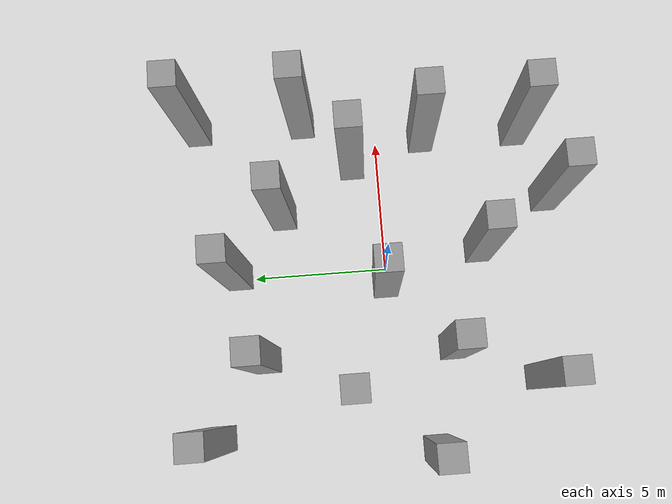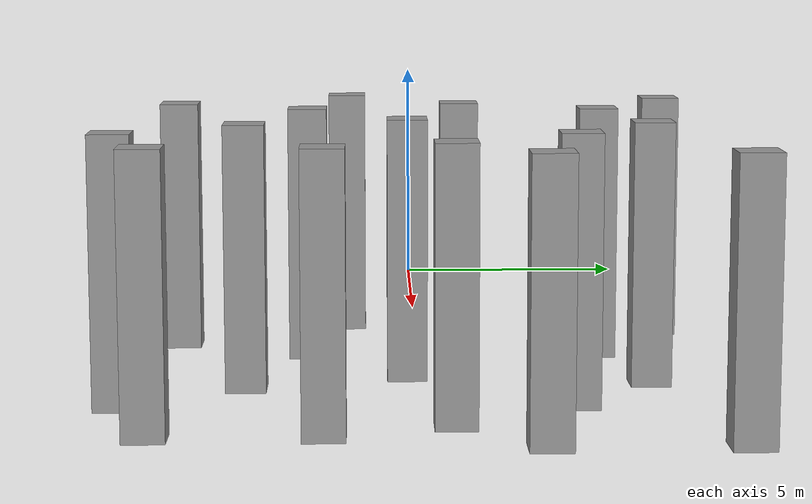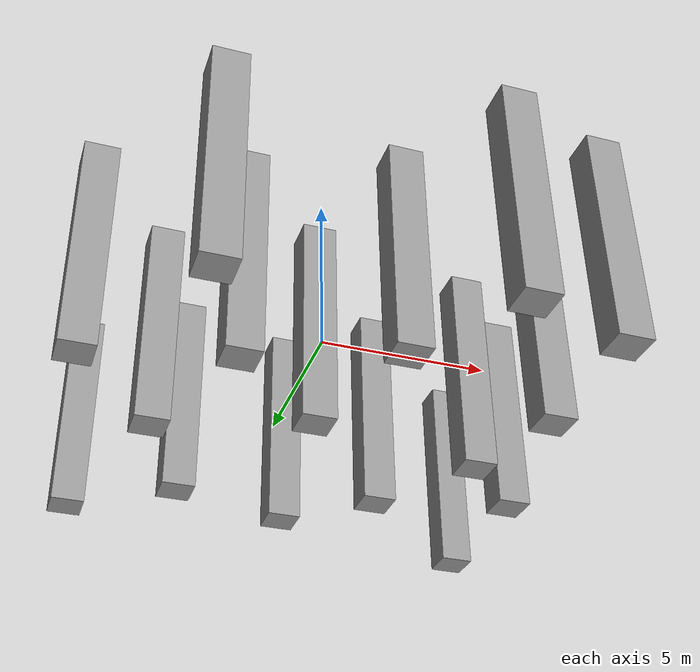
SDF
<?xml version='1.0'?>
<sdf version='1.7'>
  <model name='obstacle_zh'>
    <link name='link_0'>
      <inertial>
        <mass>6.57686</mass>
        <inertia>
          <ixx>24.255</ixx>
          <ixy>0</ixy>
          <ixz>0</ixz>
          <iyy>24.255</iyy>
          <iyz>0</iyz>
          <izz>1.09614</izz>
        </inertia>
        <pose>0 0 0 0 -0 0</pose>
      </inertial>
      <pose>-0.213065 -0.025285 0.5 0 -0 0</pose>
      <visual name='visual'>
        <pose>0 0 0 0 -0 0</pose>
        <geometry>
          <box>
            <size>1 1 6.57687</size>
          </box>
        </geometry>
        <material>
          <lighting>1</lighting>
          <script>
            <uri>file://media/materials/scripts/gazebo.material</uri>
            <name>Gazebo/Grey</name>
          </script>
          <shader type='pixel'/>
        </material>
        <transparency>0</transparency>
        <cast_shadows>1</cast_shadows>
      </visual>
      <collision name='collision'>
        <laser_retro>0</laser_retro>
        <max_contacts>10</max_contacts>
        <pose>0 0 0 0 -0 0</pose>
        <geometry>
          <box>
            <size>1 1 6.57687</size>
          </box>
        </geometry>
        <surface>
          <friction>
            <ode>
              <mu>1</mu>
              <mu2>1</mu2>
              <fdir1>0 0 0</fdir1>
              <slip1>0</slip1>
              <slip2>0</slip2>
            </ode>
            <torsional>
              <coefficient>1</coefficient>
              <patch_radius>0</patch_radius>
              <surface_radius>0</surface_radius>
              <use_patch_radius>1</use_patch_radius>
              <ode>
                <slip>0</slip>
              </ode>
            </torsional>
          </friction>
          <bounce>
            <restitution_coefficient>0</restitution_coefficient>
            <threshold>1e+06</threshold>
          </bounce>
          <contact>
            <collide_without_contact>0</collide_without_contact>
            <collide_without_contact_bitmask>1</collide_without_contact_bitmask>
            <collide_bitmask>1</collide_bitmask>
            <ode>
              <soft_cfm>0</soft_cfm>
              <soft_erp>0.2</soft_erp>
              <kp>1e+13</kp>
              <kd>1</kd>
              <max_vel>0.01</max_vel>
              <min_depth>0</min_depth>
            </ode>
            <bullet>
              <split_impulse>1</split_impulse>
              <split_impulse_penetration_threshold>-0.01</split_impulse_penetration_threshold>
              <soft_cfm>0</soft_cfm>
              <soft_erp>0.2</soft_erp>
              <kp>1e+13</kp>
              <kd>1</kd>
            </bullet>
          </contact>
        </surface>
      </collision>
    </link>
    <link name='link_0_clone'>
      <inertial>
        <mass>6.57686</mass>
        <inertia>
          <ixx>24.255</ixx>
          <ixy>0</ixy>
          <ixz>0</ixz>
          <iyy>24.255</iyy>
          <iyz>0</iyz>
          <izz>1.09614</izz>
        </inertia>
        <pose>0 0 0 0 -0 0</pose>
      </inertial>
      <pose>6 -2 0.5 0 -0 0</pose>
      <visual name='visual'>
        <pose>0 0 0 0 -0 0</pose>
        <geometry>
          <box>
            <size>1 1 6.57687</size>
          </box>
        </geometry>
        <material>
          <lighting>1</lighting>
          <script>
            <uri>file://media/materials/scripts/gazebo.material</uri>
            <name>Gazebo/Grey</name>
          </script>
          <shader type='pixel'/>
        </material>
        <transparency>0</transparency>
        <cast_shadows>1</cast_shadows>
      </visual>
      <collision name='collision'>
        <laser_retro>0</laser_retro>
        <max_contacts>10</max_contacts>
        <pose>0 0 0 0 -0 0</pose>
        <geometry>
          <box>
            <size>1 1 6.57687</size>
          </box>
        </geometry>
        <surface>
          <friction>
            <ode>
              <mu>1</mu>
              <mu2>1</mu2>
              <fdir1>0 0 0</fdir1>
              <slip1>0</slip1>
              <slip2>0</slip2>
            </ode>
            <torsional>
              <coefficient>1</coefficient>
              <patch_radius>0</patch_radius>
              <surface_radius>0</surface_radius>
              <use_patch_radius>1</use_patch_radius>
              <ode>
                <slip>0</slip>
              </ode>
            </torsional>
          </friction>
          <bounce>
            <restitution_coefficient>0</restitution_coefficient>
            <threshold>1e+06</threshold>
          </bounce>
          <contact>
            <collide_without_contact>0</collide_without_contact>
            <collide_without_contact_bitmask>1</collide_without_contact_bitmask>
            <collide_bitmask>1</collide_bitmask>
            <ode>
              <soft_cfm>0</soft_cfm>
              <soft_erp>0.2</soft_erp>
              <kp>1e+13</kp>
              <kd>1</kd>
              <max_vel>0.01</max_vel>
              <min_depth>0</min_depth>
            </ode>
            <bullet>
              <split_impulse>1</split_impulse>
              <split_impulse_penetration_threshold>-0.01</split_impulse_penetration_threshold>
              <soft_cfm>0</soft_cfm>
              <soft_erp>0.2</soft_erp>
              <kp>1e+13</kp>
              <kd>1</kd>
            </bullet>
          </contact>
        </surface>
      </collision>
    </link>
    <link name='link_0_clone_0'>
      <inertial>
        <mass>6.57686</mass>
        <inertia>
          <ixx>24.255</ixx>
          <ixy>0</ixy>
          <ixz>0</ixz>
          <iyy>24.255</iyy>
          <iyz>0</iyz>
          <izz>1.09614</izz>
        </inertia>
        <pose>0 0 0 0 -0 0</pose>
      </inertial>
      <pose>-4.48342 -6 0.5 0 -0 0</pose>
      <visual name='visual'>
        <pose>0 0 0 0 -0 0</pose>
        <geometry>
          <box>
            <size>1 1 6.57687</size>
          </box>
        </geometry>
        <material>
          <lighting>1</lighting>
          <script>
            <uri>file://media/materials/scripts/gazebo.material</uri>
            <name>Gazebo/Grey</name>
          </script>
          <shader type='pixel'/>
        </material>
        <transparency>0</transparency>
        <cast_shadows>1</cast_shadows>
      </visual>
      <collision name='collision'>
        <laser_retro>0</laser_retro>
        <max_contacts>10</max_contacts>
        <pose>0 0 0 0 -0 0</pose>
        <geometry>
          <box>
            <size>1 1 6.57687</size>
          </box>
        </geometry>
        <surface>
          <friction>
            <ode>
              <mu>1</mu>
              <mu2>1</mu2>
              <fdir1>0 0 0</fdir1>
              <slip1>0</slip1>
              <slip2>0</slip2>
            </ode>
            <torsional>
              <coefficient>1</coefficient>
              <patch_radius>0</patch_radius>
              <surface_radius>0</surface_radius>
              <use_patch_radius>1</use_patch_radius>
              <ode>
                <slip>0</slip>
              </ode>
            </torsional>
          </friction>
          <bounce>
            <restitution_coefficient>0</restitution_coefficient>
            <threshold>1e+06</threshold>
          </bounce>
          <contact>
            <collide_without_contact>0</collide_without_contact>
            <collide_without_contact_bitmask>1</collide_without_contact_bitmask>
            <collide_bitmask>1</collide_bitmask>
            <ode>
              <soft_cfm>0</soft_cfm>
              <soft_erp>0.2</soft_erp>
              <kp>1e+13</kp>
              <kd>1</kd>
              <max_vel>0.01</max_vel>
              <min_depth>0</min_depth>
            </ode>
            <bullet>
              <split_impulse>1</split_impulse>
              <split_impulse_penetration_threshold>-0.01</split_impulse_penetration_threshold>
              <soft_cfm>0</soft_cfm>
              <soft_erp>0.2</soft_erp>
              <kp>1e+13</kp>
              <kd>1</kd>
            </bullet>
          </contact>
        </surface>
      </collision>
    </link>
    <link name='link_0_clone_1'>
      <inertial>
        <mass>6.57686</mass>
        <inertia>
          <ixx>24.255</ixx>
          <ixy>0</ixy>
          <ixz>0</ixz>
          <iyy>24.255</iyy>
          <iyz>0</iyz>
          <izz>1.09614</izz>
        </inertia>
        <pose>0 0 0 0 -0 0</pose>
      </inertial>
      <pose>-3 5 0.5 0 -0 0</pose>
      <visual name='visual'>
        <pose>0 0 0 0 -0 0</pose>
        <geometry>
          <box>
            <size>1 1 6.57687</size>
          </box>
        </geometry>
        <material>
          <lighting>1</lighting>
          <script>
            <uri>file://media/materials/scripts/gazebo.material</uri>
            <name>Gazebo/Grey</name>
          </script>
          <shader type='pixel'/>
        </material>
        <transparency>0</transparency>
        <cast_shadows>1</cast_shadows>
      </visual>
      <collision name='collision'>
        <laser_retro>0</laser_retro>
        <max_contacts>10</max_contacts>
        <pose>0 0 0 0 -0 0</pose>
        <geometry>
          <box>
            <size>1 1 6.57687</size>
          </box>
        </geometry>
        <surface>
          <friction>
            <ode>
              <mu>1</mu>
              <mu2>1</mu2>
              <fdir1>0 0 0</fdir1>
              <slip1>0</slip1>
              <slip2>0</slip2>
            </ode>
            <torsional>
              <coefficient>1</coefficient>
              <patch_radius>0</patch_radius>
              <surface_radius>0</surface_radius>
              <use_patch_radius>1</use_patch_radius>
              <ode>
                <slip>0</slip>
              </ode>
            </torsional>
          </friction>
          <bounce>
            <restitution_coefficient>0</restitution_coefficient>
            <threshold>1e+06</threshold>
          </bounce>
          <contact>
            <collide_without_contact>0</collide_without_contact>
            <collide_without_contact_bitmask>1</collide_without_contact_bitmask>
            <collide_bitmask>1</collide_bitmask>
            <ode>
              <soft_cfm>0</soft_cfm>
              <soft_erp>0.2</soft_erp>
              <kp>1e+13</kp>
              <kd>1</kd>
              <max_vel>0.01</max_vel>
              <min_depth>0</min_depth>
            </ode>
            <bullet>
              <split_impulse>1</split_impulse>
              <split_impulse_penetration_threshold>-0.01</split_impulse_penetration_threshold>
              <soft_cfm>0</soft_cfm>
              <soft_erp>0.2</soft_erp>
              <kp>1e+13</kp>
              <kd>1</kd>
            </bullet>
          </contact>
        </surface>
      </collision>
    </link>
    <link name='link_0_clone_10'>
      <inertial>
        <mass>6.57686</mass>
        <inertia>
          <ixx>24.255</ixx>
          <ixy>0</ixy>
          <ixz>0</ixz>
          <iyy>24.255</iyy>
          <iyz>0</iyz>
          <izz>1.09614</izz>
        </inertia>
        <pose>0 0 0 0 -0 0</pose>
      </inertial>
      <pose>3 -7 0.5 0 -0 0</pose>
      <visual name='visual'>
        <pose>0 0 0 0 -0 0</pose>
        <geometry>
          <box>
            <size>1 1 6.57687</size>
          </box>
        </geometry>
        <material>
          <lighting>1</lighting>
          <script>
            <uri>file://media/materials/scripts/gazebo.material</uri>
            <name>Gazebo/Grey</name>
          </script>
          <shader type='pixel'/>
        </material>
        <transparency>0</transparency>
        <cast_shadows>1</cast_shadows>
      </visual>
      <collision name='collision'>
        <laser_retro>0</laser_retro>
        <max_contacts>10</max_contacts>
        <pose>0 0 0 0 -0 0</pose>
        <geometry>
          <box>
            <size>1 1 6.57687</size>
          </box>
        </geometry>
        <surface>
          <friction>
            <ode>
              <mu>1</mu>
              <mu2>1</mu2>
              <fdir1>0 0 0</fdir1>
              <slip1>0</slip1>
              <slip2>0</slip2>
            </ode>
            <torsional>
              <coefficient>1</coefficient>
              <patch_radius>0</patch_radius>
              <surface_radius>0</surface_radius>
              <use_patch_radius>1</use_patch_radius>
              <ode>
                <slip>0</slip>
              </ode>
            </torsional>
          </friction>
          <bounce>
            <restitution_coefficient>0</restitution_coefficient>
            <threshold>1e+06</threshold>
          </bounce>
          <contact>
            <collide_without_contact>0</collide_without_contact>
            <collide_without_contact_bitmask>1</collide_without_contact_bitmask>
            <collide_bitmask>1</collide_bitmask>
            <ode>
              <soft_cfm>0</soft_cfm>
              <soft_erp>0.2</soft_erp>
              <kp>1e+13</kp>
              <kd>1</kd>
              <max_vel>0.01</max_vel>
              <min_depth>0</min_depth>
            </ode>
            <bullet>
              <split_impulse>1</split_impulse>
              <split_impulse_penetration_threshold>-0.01</split_impulse_penetration_threshold>
              <soft_cfm>0</soft_cfm>
              <soft_erp>0.2</soft_erp>
              <kp>1e+13</kp>
              <kd>1</kd>
            </bullet>
          </contact>
        </surface>
      </collision>
    </link>
    <link name='link_0_clone_11'>
      <inertial>
        <mass>6.57686</mass>
        <inertia>
          <ixx>24.255</ixx>
          <ixy>0</ixy>
          <ixz>0</ixz>
          <iyy>24.255</iyy>
          <iyz>0</iyz>
          <izz>1.09614</izz>
        </inertia>
        <pose>0 0 0 0 -0 0</pose>
      </inertial>
      <pose>-7 -1.57666 0.5 0 -0 0</pose>
      <visual name='visual'>
        <pose>0 0 0 0 -0 0</pose>
        <geometry>
          <box>
            <size>1 1 6.57687</size>
          </box>
        </geometry>
        <material>
          <lighting>1</lighting>
          <script>
            <uri>file://media/materials/scripts/gazebo.material</uri>
            <name>Gazebo/Grey</name>
          </script>
          <shader type='pixel'/>
        </material>
        <transparency>0</transparency>
        <cast_shadows>1</cast_shadows>
      </visual>
      <collision name='collision'>
        <laser_retro>0</laser_retro>
        <max_contacts>10</max_contacts>
        <pose>0 0 0 0 -0 0</pose>
        <geometry>
          <box>
            <size>1 1 6.57687</size>
          </box>
        </geometry>
        <surface>
          <friction>
            <ode>
              <mu>1</mu>
              <mu2>1</mu2>
              <fdir1>0 0 0</fdir1>
              <slip1>0</slip1>
              <slip2>0</slip2>
            </ode>
            <torsional>
              <coefficient>1</coefficient>
              <patch_radius>0</patch_radius>
              <surface_radius>0</surface_radius>
              <use_patch_radius>1</use_patch_radius>
              <ode>
                <slip>0</slip>
              </ode>
            </torsional>
          </friction>
          <bounce>
            <restitution_coefficient>0</restitution_coefficient>
            <threshold>1e+06</threshold>
          </bounce>
          <contact>
            <collide_without_contact>0</collide_without_contact>
            <collide_without_contact_bitmask>1</collide_without_contact_bitmask>
            <collide_bitmask>1</collide_bitmask>
            <ode>
              <soft_cfm>0</soft_cfm>
              <soft_erp>0.2</soft_erp>
              <kp>1e+13</kp>
              <kd>1</kd>
              <max_vel>0.01</max_vel>
              <min_depth>0</min_depth>
            </ode>
            <bullet>
              <split_impulse>1</split_impulse>
              <split_impulse_penetration_threshold>-0.01</split_impulse_penetration_threshold>
              <soft_cfm>0</soft_cfm>
              <soft_erp>0.2</soft_erp>
              <kp>1e+13</kp>
              <kd>1</kd>
            </bullet>
          </contact>
        </surface>
      </collision>
    </link>
    <link name='link_0_clone_12'>
      <inertial>
        <mass>6.57686</mass>
        <inertia>
          <ixx>24.255</ixx>
          <ixy>0</ixy>
          <ixz>0</ixz>
          <iyy>24.255</iyy>
          <iyz>0</iyz>
          <izz>1.09614</izz>
        </inertia>
        <pose>0 0 0 0 -0 0</pose>
      </inertial>
      <pose>-6 7 0.5 0 -0 0</pose>
      <visual name='visual'>
        <pose>0 0 0 0 -0 0</pose>
        <geometry>
          <box>
            <size>1 1 6.57687</size>
          </box>
        </geometry>
        <material>
          <lighting>1</lighting>
          <script>
            <uri>file://media/materials/scripts/gazebo.material</uri>
            <name>Gazebo/Grey</name>
          </script>
          <shader type='pixel'/>
        </material>
        <transparency>0</transparency>
        <cast_shadows>1</cast_shadows>
      </visual>
      <collision name='collision'>
        <laser_retro>0</laser_retro>
        <max_contacts>10</max_contacts>
        <pose>0 0 0 0 -0 0</pose>
        <geometry>
          <box>
            <size>1 1 6.57687</size>
          </box>
        </geometry>
        <surface>
          <friction>
            <ode>
              <mu>1</mu>
              <mu2>1</mu2>
              <fdir1>0 0 0</fdir1>
              <slip1>0</slip1>
              <slip2>0</slip2>
            </ode>
            <torsional>
              <coefficient>1</coefficient>
              <patch_radius>0</patch_radius>
              <surface_radius>0</surface_radius>
              <use_patch_radius>1</use_patch_radius>
              <ode>
                <slip>0</slip>
              </ode>
            </torsional>
          </friction>
          <bounce>
            <restitution_coefficient>0</restitution_coefficient>
            <threshold>1e+06</threshold>
          </bounce>
          <contact>
            <collide_without_contact>0</collide_without_contact>
            <collide_without_contact_bitmask>1</collide_without_contact_bitmask>
            <collide_bitmask>1</collide_bitmask>
            <ode>
              <soft_cfm>0</soft_cfm>
              <soft_erp>0.2</soft_erp>
              <kp>1e+13</kp>
              <kd>1</kd>
              <max_vel>0.01</max_vel>
              <min_depth>0</min_depth>
            </ode>
            <bullet>
              <split_impulse>1</split_impulse>
              <split_impulse_penetration_threshold>-0.01</split_impulse_penetration_threshold>
              <soft_cfm>0</soft_cfm>
              <soft_erp>0.2</soft_erp>
              <kp>1e+13</kp>
              <kd>1</kd>
            </bullet>
          </contact>
        </surface>
      </collision>
    </link>
    <link name='link_0_clone_13'>
      <inertial>
        <mass>6.57686</mass>
        <inertia>
          <ixx>24.255</ixx>
          <ixy>0</ixy>
          <ixz>0</ixz>
          <iyy>24.255</iyy>
          <iyz>0</iyz>
          <izz>1.09614</izz>
        </inertia>
        <pose>0 0 0 0 -0 0</pose>
      </inertial>
      <pose>7 7.44984 0.5 0 -0 0</pose>
      <visual name='visual'>
        <pose>0 0 0 0 -0 0</pose>
        <geometry>
          <box>
            <size>1 1 6.57687</size>
          </box>
        </geometry>
        <material>
          <lighting>1</lighting>
          <script>
            <uri>file://media/materials/scripts/gazebo.material</uri>
            <name>Gazebo/Grey</name>
          </script>
          <shader type='pixel'/>
        </material>
        <transparency>0</transparency>
        <cast_shadows>1</cast_shadows>
      </visual>
      <collision name='collision'>
        <laser_retro>0</laser_retro>
        <max_contacts>10</max_contacts>
        <pose>0 0 0 0 -0 0</pose>
        <geometry>
          <box>
            <size>1 1 6.57687</size>
          </box>
        </geometry>
        <surface>
          <friction>
            <ode>
              <mu>1</mu>
              <mu2>1</mu2>
              <fdir1>0 0 0</fdir1>
              <slip1>0</slip1>
              <slip2>0</slip2>
            </ode>
            <torsional>
              <coefficient>1</coefficient>
              <patch_radius>0</patch_radius>
              <surface_radius>0</surface_radius>
              <use_patch_radius>1</use_patch_radius>
              <ode>
                <slip>0</slip>
              </ode>
            </torsional>
          </friction>
          <bounce>
            <restitution_coefficient>0</restitution_coefficient>
            <threshold>1e+06</threshold>
          </bounce>
          <contact>
            <collide_without_contact>0</collide_without_contact>
            <collide_without_contact_bitmask>1</collide_without_contact_bitmask>
            <collide_bitmask>1</collide_bitmask>
            <ode>
              <soft_cfm>0</soft_cfm>
              <soft_erp>0.2</soft_erp>
              <kp>1e+13</kp>
              <kd>1</kd>
              <max_vel>0.01</max_vel>
              <min_depth>0</min_depth>
            </ode>
            <bullet>
              <split_impulse>1</split_impulse>
              <split_impulse_penetration_threshold>-0.01</split_impulse_penetration_threshold>
              <soft_cfm>0</soft_cfm>
              <soft_erp>0.2</soft_erp>
              <kp>1e+13</kp>
              <kd>1</kd>
            </bullet>
          </contact>
        </surface>
      </collision>
    </link>
    <link name='link_0_clone_2'>
      <inertial>
        <mass>6.57686</mass>
        <inertia>
          <ixx>24.255</ixx>
          <ixy>0</ixy>
          <ixz>0</ixz>
          <iyy>24.255</iyy>
          <iyz>0</iyz>
          <izz>1.09614</izz>
        </inertia>
        <pose>0 0 0 0 -0 0</pose>
      </inertial>
      <pose>3 4 0.5 0 -0 0</pose>
      <visual name='visual'>
        <pose>0 0 0 0 -0 0</pose>
        <geometry>
          <box>
            <size>1 1 6.57687</size>
          </box>
        </geometry>
        <material>
          <lighting>1</lighting>
          <script>
            <uri>file://media/materials/scripts/gazebo.material</uri>
            <name>Gazebo/Grey</name>
          </script>
          <shader type='pixel'/>
        </material>
        <transparency>0</transparency>
        <cast_shadows>1</cast_shadows>
      </visual>
      <collision name='collision'>
        <laser_retro>0</laser_retro>
        <max_contacts>10</max_contacts>
        <pose>0 0 0 0 -0 0</pose>
        <geometry>
          <box>
            <size>1 1 6.57687</size>
          </box>
        </geometry>
        <surface>
          <friction>
            <ode>
              <mu>1</mu>
              <mu2>1</mu2>
              <fdir1>0 0 0</fdir1>
              <slip1>0</slip1>
              <slip2>0</slip2>
            </ode>
            <torsional>
              <coefficient>1</coefficient>
              <patch_radius>0</patch_radius>
              <surface_radius>0</surface_radius>
              <use_patch_radius>1</use_patch_radius>
              <ode>
                <slip>0</slip>
              </ode>
            </torsional>
          </friction>
          <bounce>
            <restitution_coefficient>0</restitution_coefficient>
            <threshold>1e+06</threshold>
          </bounce>
          <contact>
            <collide_without_contact>0</collide_without_contact>
            <collide_without_contact_bitmask>1</collide_without_contact_bitmask>
            <collide_bitmask>1</collide_bitmask>
            <ode>
              <soft_cfm>0</soft_cfm>
              <soft_erp>0.2</soft_erp>
              <kp>1e+13</kp>
              <kd>1</kd>
              <max_vel>0.01</max_vel>
              <min_depth>0</min_depth>
            </ode>
            <bullet>
              <split_impulse>1</split_impulse>
              <split_impulse_penetration_threshold>-0.01</split_impulse_penetration_threshold>
              <soft_cfm>0</soft_cfm>
              <soft_erp>0.2</soft_erp>
              <kp>1e+13</kp>
              <kd>1</kd>
            </bullet>
          </contact>
        </surface>
      </collision>
    </link>
    <link name='link_0_clone_3'>
      <inertial>
        <mass>6.57686</mass>
        <inertia>
          <ixx>24.255</ixx>
          <ixy>0</ixy>
          <ixz>0</ixz>
          <iyy>24.255</iyy>
          <iyz>0</iyz>
          <izz>1.09614</izz>
        </inertia>
        <pose>0 0 0 0 -0 0</pose>
      </inertial>
      <pose>1 -4 0.5 0 -0 0</pose>
      <visual name='visual'>
        <pose>0 0 0 0 -0 0</pose>
        <geometry>
          <box>
            <size>1 1 6.57687</size>
          </box>
        </geometry>
        <material>
          <lighting>1</lighting>
          <script>
            <uri>file://media/materials/scripts/gazebo.material</uri>
            <name>Gazebo/Grey</name>
          </script>
          <shader type='pixel'/>
        </material>
        <transparency>0</transparency>
        <cast_shadows>1</cast_shadows>
      </visual>
      <collision name='collision'>
        <laser_retro>0</laser_retro>
        <max_contacts>10</max_contacts>
        <pose>0 0 0 0 -0 0</pose>
        <geometry>
          <box>
            <size>1 1 6.57687</size>
          </box>
        </geometry>
        <surface>
          <friction>
            <ode>
              <mu>1</mu>
              <mu2>1</mu2>
              <fdir1>0 0 0</fdir1>
              <slip1>0</slip1>
              <slip2>0</slip2>
            </ode>
            <torsional>
              <coefficient>1</coefficient>
              <patch_radius>0</patch_radius>
              <surface_radius>0</surface_radius>
              <use_patch_radius>1</use_patch_radius>
              <ode>
                <slip>0</slip>
              </ode>
            </torsional>
          </friction>
          <bounce>
            <restitution_coefficient>0</restitution_coefficient>
            <threshold>1e+06</threshold>
          </bounce>
          <contact>
            <collide_without_contact>0</collide_without_contact>
            <collide_without_contact_bitmask>1</collide_without_contact_bitmask>
            <collide_bitmask>1</collide_bitmask>
            <ode>
              <soft_cfm>0</soft_cfm>
              <soft_erp>0.2</soft_erp>
              <kp>1e+13</kp>
              <kd>1</kd>
              <max_vel>0.01</max_vel>
              <min_depth>0</min_depth>
            </ode>
            <bullet>
              <split_impulse>1</split_impulse>
              <split_impulse_penetration_threshold>-0.01</split_impulse_penetration_threshold>
              <soft_cfm>0</soft_cfm>
              <soft_erp>0.2</soft_erp>
              <kp>1e+13</kp>
              <kd>1</kd>
            </bullet>
          </contact>
        </surface>
      </collision>
    </link>
    <link name='link_0_clone_4'>
      <inertial>
        <mass>6.57686</mass>
        <inertia>
          <ixx>24.255</ixx>
          <ixy>0</ixy>
          <ixz>0</ixz>
          <iyy>24.255</iyy>
          <iyz>0</iyz>
          <izz>1.09614</izz>
        </inertia>
        <pose>0 0 0 0 -0 0</pose>
      </inertial>
      <pose>6 -6 0.5 0 -0 0</pose>
      <visual name='visual'>
        <pose>0 0 0 0 -0 0</pose>
        <geometry>
          <box>
            <size>1 1 6.57687</size>
          </box>
        </geometry>
        <material>
          <lighting>1</lighting>
          <script>
            <uri>file://media/materials/scripts/gazebo.material</uri>
            <name>Gazebo/Grey</name>
          </script>
          <shader type='pixel'/>
        </material>
        <transparency>0</transparency>
        <cast_shadows>1</cast_shadows>
      </visual>
      <collision name='collision'>
        <laser_retro>0</laser_retro>
        <max_contacts>10</max_contacts>
        <pose>0 0 0 0 -0 0</pose>
        <geometry>
          <box>
            <size>1 1 6.57687</size>
          </box>
        </geometry>
        <surface>
          <friction>
            <ode>
              <mu>1</mu>
              <mu2>1</mu2>
              <fdir1>0 0 0</fdir1>
              <slip1>0</slip1>
              <slip2>0</slip2>
            </ode>
            <torsional>
              <coefficient>1</coefficient>
              <patch_radius>0</patch_radius>
              <surface_radius>0</surface_radius>
              <use_patch_radius>1</use_patch_radius>
              <ode>
                <slip>0</slip>
              </ode>
            </torsional>
          </friction>
          <bounce>
            <restitution_coefficient>0</restitution_coefficient>
            <threshold>1e+06</threshold>
          </bounce>
          <contact>
            <collide_without_contact>0</collide_without_contact>
            <collide_without_contact_bitmask>1</collide_without_contact_bitmask>
            <collide_bitmask>1</collide_bitmask>
            <ode>
              <soft_cfm>0</soft_cfm>
              <soft_erp>0.2</soft_erp>
              <kp>1e+13</kp>
              <kd>1</kd>
              <max_vel>0.01</max_vel>
              <min_depth>0</min_depth>
            </ode>
            <bullet>
              <split_impulse>1</split_impulse>
              <split_impulse_penetration_threshold>-0.01</split_impulse_penetration_threshold>
              <soft_cfm>0</soft_cfm>
              <soft_erp>0.2</soft_erp>
              <kp>1e+13</kp>
              <kd>1</kd>
            </bullet>
          </contact>
        </surface>
      </collision>
    </link>
    <link name='link_0_clone_5'>
      <inertial>
        <mass>6.57686</mass>
        <inertia>
          <ixx>24.255</ixx>
          <ixy>0</ixy>
          <ixz>0</ixz>
          <iyy>24.255</iyy>
          <iyz>0</iyz>
          <izz>1.09614</izz>
        </inertia>
        <pose>0 0 0 0 -0 0</pose>
      </inertial>
      <pose>-3 -2.57004 0.5 0 -0 0</pose>
      <visual name='visual'>
        <pose>0 0 0 0 -0 0</pose>
        <geometry>
          <box>
            <size>1 1 6.57687</size>
          </box>
        </geometry>
        <material>
          <lighting>1</lighting>
          <script>
            <uri>file://media/materials/scripts/gazebo.material</uri>
            <name>Gazebo/Grey</name>
          </script>
          <shader type='pixel'/>
        </material>
        <transparency>0</transparency>
        <cast_shadows>1</cast_shadows>
      </visual>
      <collision name='collision'>
        <laser_retro>0</laser_retro>
        <max_contacts>10</max_contacts>
        <pose>0 0 0 0 -0 0</pose>
        <geometry>
          <box>
            <size>1 1 6.57687</size>
          </box>
        </geometry>
        <surface>
          <friction>
            <ode>
              <mu>1</mu>
              <mu2>1</mu2>
              <fdir1>0 0 0</fdir1>
              <slip1>0</slip1>
              <slip2>0</slip2>
            </ode>
            <torsional>
              <coefficient>1</coefficient>
              <patch_radius>0</patch_radius>
              <surface_radius>0</surface_radius>
              <use_patch_radius>1</use_patch_radius>
              <ode>
                <slip>0</slip>
              </ode>
            </torsional>
          </friction>
          <bounce>
            <restitution_coefficient>0</restitution_coefficient>
            <threshold>1e+06</threshold>
          </bounce>
          <contact>
            <collide_without_contact>0</collide_without_contact>
            <collide_without_contact_bitmask>1</collide_without_contact_bitmask>
            <collide_bitmask>1</collide_bitmask>
            <ode>
              <soft_cfm>0</soft_cfm>
              <soft_erp>0.2</soft_erp>
              <kp>1e+13</kp>
              <kd>1</kd>
              <max_vel>0.01</max_vel>
              <min_depth>0</min_depth>
            </ode>
            <bullet>
              <split_impulse>1</split_impulse>
              <split_impulse_penetration_threshold>-0.01</split_impulse_penetration_threshold>
              <soft_cfm>0</soft_cfm>
              <soft_erp>0.2</soft_erp>
              <kp>1e+13</kp>
              <kd>1</kd>
            </bullet>
          </contact>
        </surface>
      </collision>
    </link>
    <link name='link_0_clone_6'>
      <inertial>
        <mass>6.57686</mass>
        <inertia>
          <ixx>24.255</ixx>
          <ixy>0</ixy>
          <ixz>0</ixz>
          <iyy>24.255</iyy>
          <iyz>0</iyz>
          <izz>1.09614</izz>
        </inertia>
        <pose>0 0 0 0 -0 0</pose>
      </inertial>
      <pose>0.564052 6 0.5 0 -0 0</pose>
      <visual name='visual'>
        <pose>0 0 0 0 -0 0</pose>
        <geometry>
          <box>
            <size>1 1 6.57687</size>
          </box>
        </geometry>
        <material>
          <lighting>1</lighting>
          <script>
            <uri>file://media/materials/scripts/gazebo.material</uri>
            <name>Gazebo/Grey</name>
          </script>
          <shader type='pixel'/>
        </material>
        <transparency>0</transparency>
        <cast_shadows>1</cast_shadows>
      </visual>
      <collision name='collision'>
        <laser_retro>0</laser_retro>
        <max_contacts>10</max_contacts>
        <pose>0 0 0 0 -0 0</pose>
        <geometry>
          <box>
            <size>1 1 6.57687</size>
          </box>
        </geometry>
        <surface>
          <friction>
            <ode>
              <mu>1</mu>
              <mu2>1</mu2>
              <fdir1>0 0 0</fdir1>
              <slip1>0</slip1>
              <slip2>0</slip2>
            </ode>
            <torsional>
              <coefficient>1</coefficient>
              <patch_radius>0</patch_radius>
              <surface_radius>0</surface_radius>
              <use_patch_radius>1</use_patch_radius>
              <ode>
                <slip>0</slip>
              </ode>
            </torsional>
          </friction>
          <bounce>
            <restitution_coefficient>0</restitution_coefficient>
            <threshold>1e+06</threshold>
          </bounce>
          <contact>
            <collide_without_contact>0</collide_without_contact>
            <collide_without_contact_bitmask>1</collide_without_contact_bitmask>
            <collide_bitmask>1</collide_bitmask>
            <ode>
              <soft_cfm>0</soft_cfm>
              <soft_erp>0.2</soft_erp>
              <kp>1e+13</kp>
              <kd>1</kd>
              <max_vel>0.01</max_vel>
              <min_depth>0</min_depth>
            </ode>
            <bullet>
              <split_impulse>1</split_impulse>
              <split_impulse_penetration_threshold>-0.01</split_impulse_penetration_threshold>
              <soft_cfm>0</soft_cfm>
              <soft_erp>0.2</soft_erp>
              <kp>1e+13</kp>
              <kd>1</kd>
            </bullet>
          </contact>
        </surface>
      </collision>
    </link>
    <link name='link_0_clone_7'>
      <inertial>
        <mass>6.57686</mass>
        <inertia>
          <ixx>24.255</ixx>
          <ixy>0</ixy>
          <ixz>0</ixz>
          <iyy>24.255</iyy>
          <iyz>0</iyz>
          <izz>1.09614</izz>
        </inertia>
        <pose>0 0 0 0 -0 0</pose>
      </inertial>
      <pose>7 3 0.5 0 -0 0</pose>
      <visual name='visual'>
        <pose>0 0 0 0 -0 0</pose>
        <geometry>
          <box>
            <size>1 1 6.57687</size>
          </box>
        </geometry>
        <material>
          <lighting>1</lighting>
          <script>
            <uri>file://media/materials/scripts/gazebo.material</uri>
            <name>Gazebo/Grey</name>
          </script>
          <shader type='pixel'/>
        </material>
        <transparency>0</transparency>
        <cast_shadows>1</cast_shadows>
      </visual>
      <collision name='collision'>
        <laser_retro>0</laser_retro>
        <max_contacts>10</max_contacts>
        <pose>0 0 0 0 -0 0</pose>
        <geometry>
          <box>
            <size>1 1 6.57687</size>
          </box>
        </geometry>
        <surface>
          <friction>
            <ode>
              <mu>1</mu>
              <mu2>1</mu2>
              <fdir1>0 0 0</fdir1>
              <slip1>0</slip1>
              <slip2>0</slip2>
            </ode>
            <torsional>
              <coefficient>1</coefficient>
              <patch_radius>0</patch_radius>
              <surface_radius>0</surface_radius>
              <use_patch_radius>1</use_patch_radius>
              <ode>
                <slip>0</slip>
              </ode>
            </torsional>
          </friction>
          <bounce>
            <restitution_coefficient>0</restitution_coefficient>
            <threshold>1e+06</threshold>
          </bounce>
          <contact>
            <collide_without_contact>0</collide_without_contact>
            <collide_without_contact_bitmask>1</collide_without_contact_bitmask>
            <collide_bitmask>1</collide_bitmask>
            <ode>
              <soft_cfm>0</soft_cfm>
              <soft_erp>0.2</soft_erp>
              <kp>1e+13</kp>
              <kd>1</kd>
              <max_vel>0.01</max_vel>
              <min_depth>0</min_depth>
            </ode>
            <bullet>
              <split_impulse>1</split_impulse>
              <split_impulse_penetration_threshold>-0.01</split_impulse_penetration_threshold>
              <soft_cfm>0</soft_cfm>
              <soft_erp>0.2</soft_erp>
              <kp>1e+13</kp>
              <kd>1</kd>
            </bullet>
          </contact>
        </surface>
      </collision>
    </link>
    <link name='link_0_clone_8'>
      <inertial>
        <mass>6.57686</mass>
        <inertia>
          <ixx>24.255</ixx>
          <ixy>0</ixy>
          <ixz>0</ixz>
          <iyy>24.255</iyy>
          <iyz>0</iyz>
          <izz>1.09614</izz>
        </inertia>
        <pose>0 0 0 0 -0 0</pose>
      </inertial>
      <pose>5 0.999999 0.5 0 -0 0</pose>
      <visual name='visual'>
        <pose>0 0 0 0 -0 0</pose>
        <geometry>
          <box>
            <size>1 1 6.57687</size>
          </box>
        </geometry>
        <material>
          <lighting>1</lighting>
          <script>
            <uri>file://media/materials/scripts/gazebo.material</uri>
            <name>Gazebo/Grey</name>
          </script>
          <shader type='pixel'/>
        </material>
        <transparency>0</transparency>
        <cast_shadows>1</cast_shadows>
      </visual>
      <collision name='collision'>
        <laser_retro>0</laser_retro>
        <max_contacts>10</max_contacts>
        <pose>0 0 0 0 -0 0</pose>
        <geometry>
          <box>
            <size>1 1 6.57687</size>
          </box>
        </geometry>
        <surface>
          <friction>
            <ode>
              <mu>1</mu>
              <mu2>1</mu2>
              <fdir1>0 0 0</fdir1>
              <slip1>0</slip1>
              <slip2>0</slip2>
            </ode>
            <torsional>
              <coefficient>1</coefficient>
              <patch_radius>0</patch_radius>
              <surface_radius>0</surface_radius>
              <use_patch_radius>1</use_patch_radius>
              <ode>
                <slip>0</slip>
              </ode>
            </torsional>
          </friction>
          <bounce>
            <restitution_coefficient>0</restitution_coefficient>
            <threshold>1e+06</threshold>
          </bounce>
          <contact>
            <collide_without_contact>0</collide_without_contact>
            <collide_without_contact_bitmask>1</collide_without_contact_bitmask>
            <collide_bitmask>1</collide_bitmask>
            <ode>
              <soft_cfm>0</soft_cfm>
              <soft_erp>0.2</soft_erp>
              <kp>1e+13</kp>
              <kd>1</kd>
              <max_vel>0.01</max_vel>
              <min_depth>0</min_depth>
            </ode>
            <bullet>
              <split_impulse>1</split_impulse>
              <split_impulse_penetration_threshold>-0.01</split_impulse_penetration_threshold>
              <soft_cfm>0</soft_cfm>
              <soft_erp>0.2</soft_erp>
              <kp>1e+13</kp>
              <kd>1</kd>
            </bullet>
          </contact>
        </surface>
      </collision>
    </link>
    <link name='link_0_clone_9'>
      <inertial>
        <mass>6.57686</mass>
        <inertia>
          <ixx>24.255</ixx>
          <ixy>0</ixy>
          <ixz>0</ixz>
          <iyy>24.255</iyy>
          <iyz>0</iyz>
          <izz>1.09614</izz>
        </inertia>
        <pose>0 0 0 0 -0 0</pose>
      </inertial>
      <pose>-4.51691 1.42889 0.5 0 -0 0</pose>
      <visual name='visual'>
        <pose>0 0 0 0 -0 0</pose>
        <geometry>
          <box>
            <size>1 1 6.57687</size>
          </box>
        </geometry>
        <material>
          <lighting>1</lighting>
          <script>
            <uri>file://media/materials/scripts/gazebo.material</uri>
            <name>Gazebo/Grey</name>
          </script>
          <shader type='pixel'/>
        </material>
        <transparency>0</transparency>
        <cast_shadows>1</cast_shadows>
      </visual>
      <collision name='collision'>
        <laser_retro>0</laser_retro>
        <max_contacts>10</max_contacts>
        <pose>0 0 0 0 -0 0</pose>
        <geometry>
          <box>
            <size>1 1 6.57687</size>
          </box>
        </geometry>
        <surface>
          <friction>
            <ode>
              <mu>1</mu>
              <mu2>1</mu2>
              <fdir1>0 0 0</fdir1>
              <slip1>0</slip1>
              <slip2>0</slip2>
            </ode>
            <torsional>
              <coefficient>1</coefficient>
              <patch_radius>0</patch_radius>
              <surface_radius>0</surface_radius>
              <use_patch_radius>1</use_patch_radius>
              <ode>
                <slip>0</slip>
              </ode>
            </torsional>
          </friction>
          <bounce>
            <restitution_coefficient>0</restitution_coefficient>
            <threshold>1e+06</threshold>
          </bounce>
          <contact>
            <collide_without_contact>0</collide_without_contact>
            <collide_without_contact_bitmask>1</collide_without_contact_bitmask>
            <collide_bitmask>1</collide_bitmask>
            <ode>
              <soft_cfm>0</soft_cfm>
              <soft_erp>0.2</soft_erp>
              <kp>1e+13</kp>
              <kd>1</kd>
              <max_vel>0.01</max_vel>
              <min_depth>0</min_depth>
            </ode>
            <bullet>
              <split_impulse>1</split_impulse>
              <split_impulse_penetration_threshold>-0.01</split_impulse_penetration_threshold>
              <soft_cfm>0</soft_cfm>
              <soft_erp>0.2</soft_erp>
              <kp>1e+13</kp>
              <kd>1</kd>
            </bullet>
          </contact>
        </surface>
      </collision>
    </link>
    <static>0</static>
    <allow_auto_disable>1</allow_auto_disable>
  </model>
</sdf>
